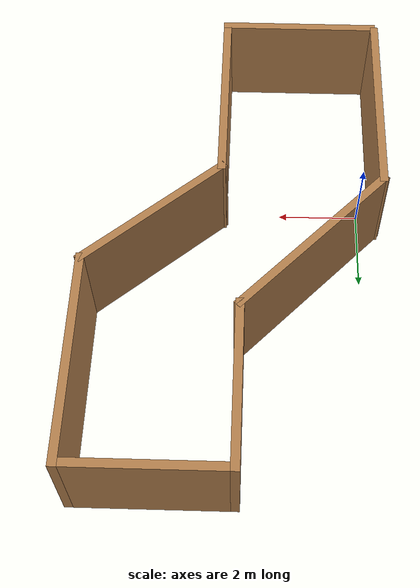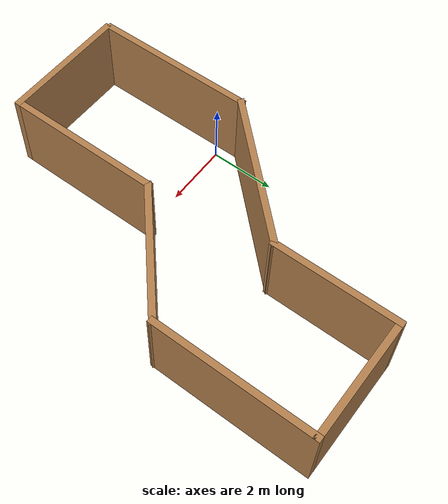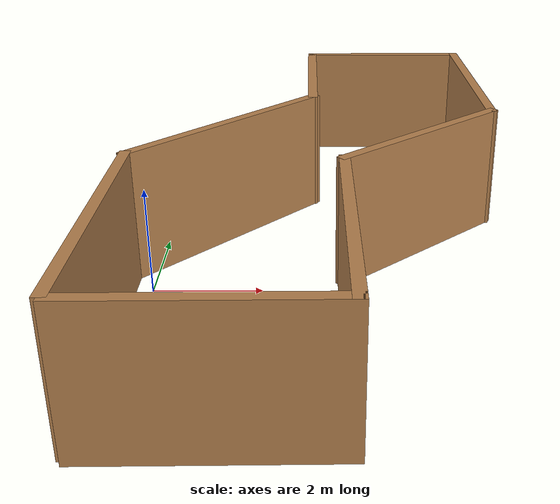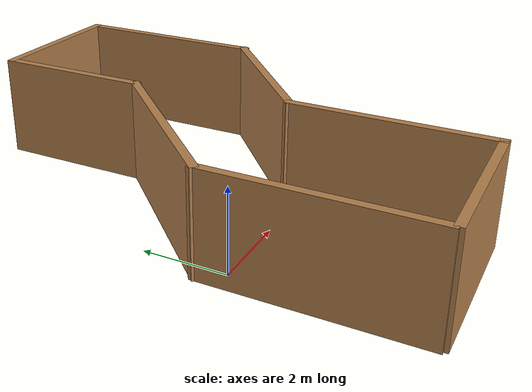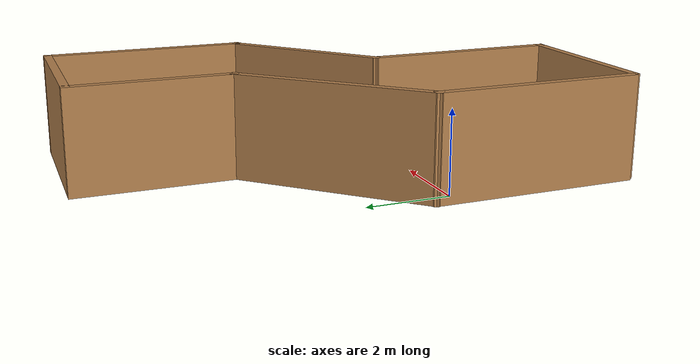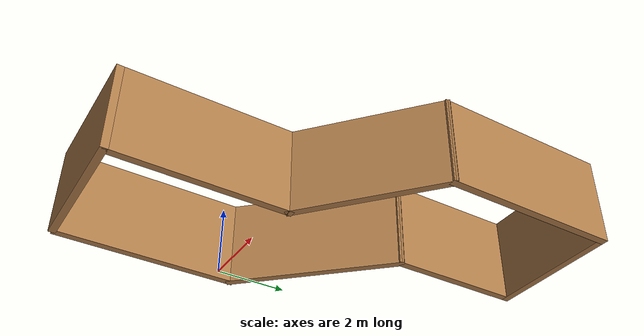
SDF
<?xml version='1.0'?>
<sdf version='1.4'>
  <model name='bended_corridor'>
    <link name='Wall_0'>
      <collision name='Wall_0_Collision'>
        <geometry>
          <box>
            <size>5.08355 0.2 2.5</size>
          </box>
        </geometry>
        <pose>0 0 1.25 0 -0 0</pose>
      </collision>
      <visual name='Wall_0_Visual'>
        <pose>0 0 1.25 0 -0 0</pose>
        <geometry>
          <box>
            <size>5.08355 0.2 2.5</size>
          </box>
        </geometry>
        <material>
          <script>
            <uri>file://media/materials/scripts/gazebo.material</uri>
            <name>Gazebo/WoodFloor</name>
          </script>
        </material>
      </visual>
      <velocity_decay>
        <linear>0</linear>
        <angular>0</angular>
      </velocity_decay>
      <pose>-0.4 -1.90823 0 0 -0 1.5708</pose>
    </link>
    <link name='Wall_1'>
      <collision name='Wall_1_Collision'>
        <geometry>
          <box>
            <size>5.01946 0.2 2.5</size>
          </box>
        </geometry>
        <pose>0 0 1.25 0 -0 0</pose>
      </collision>
      <visual name='Wall_1_Visual'>
        <pose>0 0 1.25 0 -0 0</pose>
        <geometry>
          <box>
            <size>5.01946 0.2 2.5</size>
          </box>
        </geometry>
        <material>
          <script>
            <uri>file://media/materials/scripts/gazebo.material</uri>
            <name>Gazebo/WoodFloor</name>
          </script>
        </material>
      </visual>
      <velocity_decay>
        <linear>0</linear>
        <angular>0</angular>
      </velocity_decay>
      <pose>1.26831 2.27238 0 0 -0 0.806093</pose>
    </link>
    <link name='Wall_2'>
      <collision name='Wall_2_Collision'>
        <geometry>
          <box>
            <size>3.94517 0.2 2.5</size>
          </box>
        </geometry>
        <pose>0 0 1.25 0 -0 0</pose>
      </collision>
      <visual name='Wall_2_Visual'>
        <pose>0 0 1.25 0 -0 0</pose>
        <geometry>
          <box>
            <size>3.94517 0.2 2.5</size>
          </box>
        </geometry>
        <material>
          <script>
            <uri>file://media/materials/scripts/gazebo.material</uri>
            <name>Gazebo/WoodFloor</name>
          </script>
        </material>
      </visual>
      <velocity_decay>
        <linear>0</linear>
        <angular>0</angular>
      </velocity_decay>
      <pose>2.93662 5.8838 0 0 -0 1.5708</pose>
    </link>
    <link name='Wall_3'>
      <collision name='Wall_3_Collision'>
        <geometry>
          <box>
            <size>3.83817 0.2 2.5</size>
          </box>
        </geometry>
        <pose>0 0 1.25 0 -0 0</pose>
      </collision>
      <visual name='Wall_3_Visual'>
        <pose>0 0 1.25 0 -0 0</pose>
        <geometry>
          <box>
            <size>3.83817 0.2 2.5</size>
          </box>
        </geometry>
        <material>
          <script>
            <uri>file://media/materials/scripts/gazebo.material</uri>
            <name>Gazebo/WoodFloor</name>
          </script>
        </material>
      </visual>
      <velocity_decay>
        <linear>0</linear>
        <angular>0</angular>
      </velocity_decay>
      <pose>4.75571 7.75638 0 0 -0 0</pose>
    </link>
    <link name='Wall_4'>
      <collision name='Wall_4_Collision'>
        <geometry>
          <box>
            <size>5.01523 0.2 2.5</size>
          </box>
        </geometry>
        <pose>0 0 1.25 0 -0 0</pose>
      </collision>
      <visual name='Wall_4_Visual'>
        <pose>0 0 1.25 0 -0 0</pose>
        <geometry>
          <box>
            <size>5.01523 0.2 2.5</size>
          </box>
        </geometry>
        <material>
          <script>
            <uri>file://media/materials/scripts/gazebo.material</uri>
            <name>Gazebo/WoodFloor</name>
          </script>
        </material>
      </visual>
      <velocity_decay>
        <linear>0</linear>
        <angular>0</angular>
      </velocity_decay>
      <pose>6.57479 5.34877 0 0 0 -1.5708</pose>
    </link>
    <link name='Wall_5'>
      <collision name='Wall_5_Collision'>
        <geometry>
          <box>
            <size>4.29705 0.2 2.5</size>
          </box>
        </geometry>
        <pose>0 0 1.25 0 -0 0</pose>
      </collision>
      <visual name='Wall_5_Visual'>
        <pose>0 0 1.25 0 -0 0</pose>
        <geometry>
          <box>
            <size>4.29705 0.2 2.5</size>
          </box>
        </geometry>
        <material>
          <script>
            <uri>file://media/materials/scripts/gazebo.material</uri>
            <name>Gazebo/WoodFloor</name>
          </script>
        </material>
      </visual>
      <velocity_decay>
        <linear>0</linear>
        <angular>0</angular>
      </velocity_decay>
      <pose>5.02322 1.6036 0 0 0 -2.43013</pose>
    </link>
    <link name='Wall_6'>
      <collision name='Wall_6_Collision'>
        <geometry>
          <box>
            <size>4.90822 0.2 2.5</size>
          </box>
        </geometry>
        <pose>0 0 1.25 0 -0 0</pose>
      </collision>
      <visual name='Wall_6_Visual'>
        <pose>0 0 1.25 0 -0 0</pose>
        <geometry>
          <box>
            <size>4.90822 0.2 2.5</size>
          </box>
        </geometry>
        <material>
          <script>
            <uri>file://media/materials/scripts/gazebo.material</uri>
            <name>Gazebo/WoodFloor</name>
          </script>
        </material>
      </visual>
      <velocity_decay>
        <linear>0</linear>
        <angular>0</angular>
      </velocity_decay>
      <pose>3.47165 -2.08807 0 0 0 -1.5708</pose>
    </link>
    <link name='Wall_7'>
      <collision name='Wall_7_Collision'>
        <geometry>
          <box>
            <size>3.99868 0.2 2.5</size>
          </box>
        </geometry>
        <pose>0 0 1.25 0 -0 0</pose>
      </collision>
      <visual name='Wall_7_Visual'>
        <pose>0 0 1.25 0 -0 0</pose>
        <geometry>
          <box>
            <size>3.99868 0.2 2.5</size>
          </box>
        </geometry>
        <material>
          <script>
            <uri>file://media/materials/scripts/gazebo.material</uri>
            <name>Gazebo/WoodFloor</name>
          </script>
        </material>
      </visual>
      <velocity_decay>
        <linear>0</linear>
        <angular>0</angular>
      </velocity_decay>
      <pose>1.57231 -4.44219 0 0 -0 3.14159</pose>
    </link>
    <static>1</static>
  </model>
</sdf>
